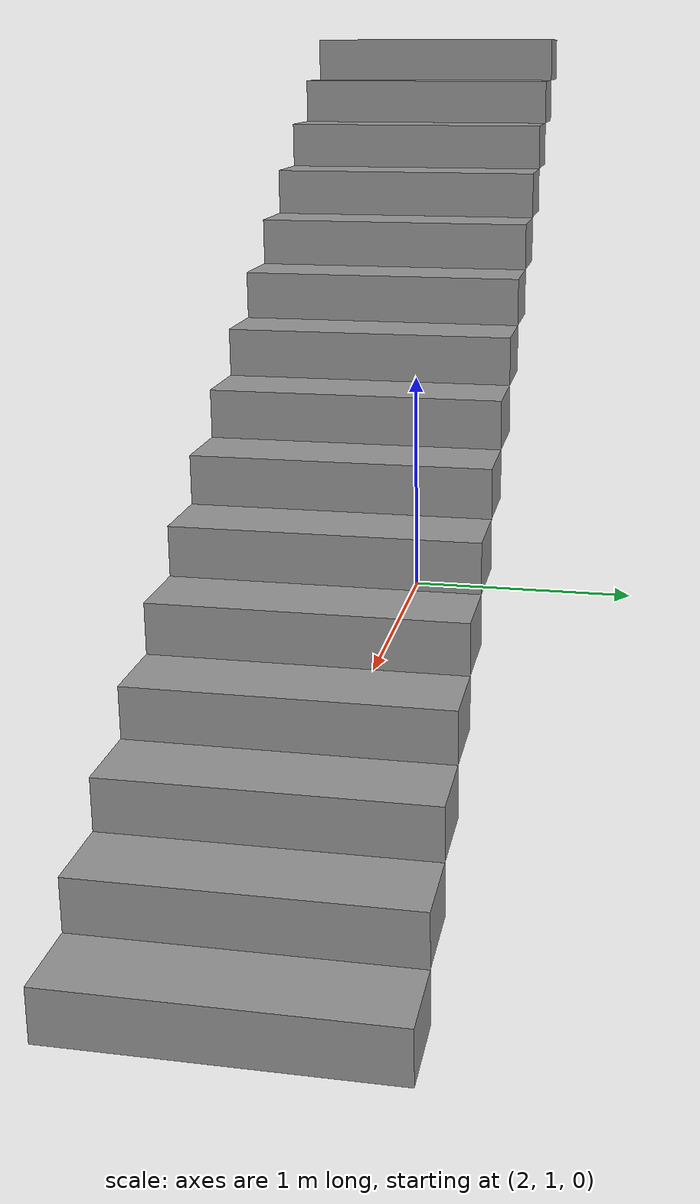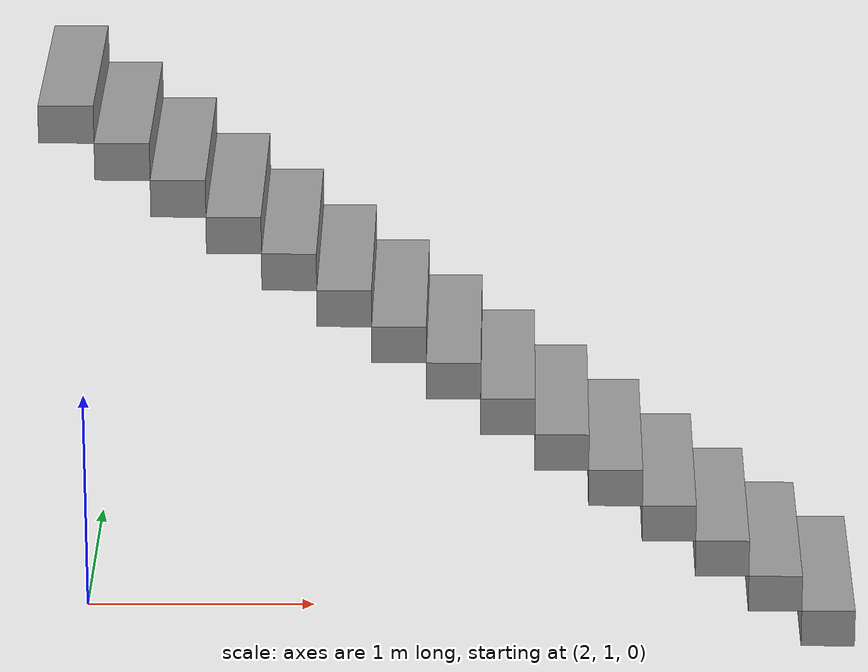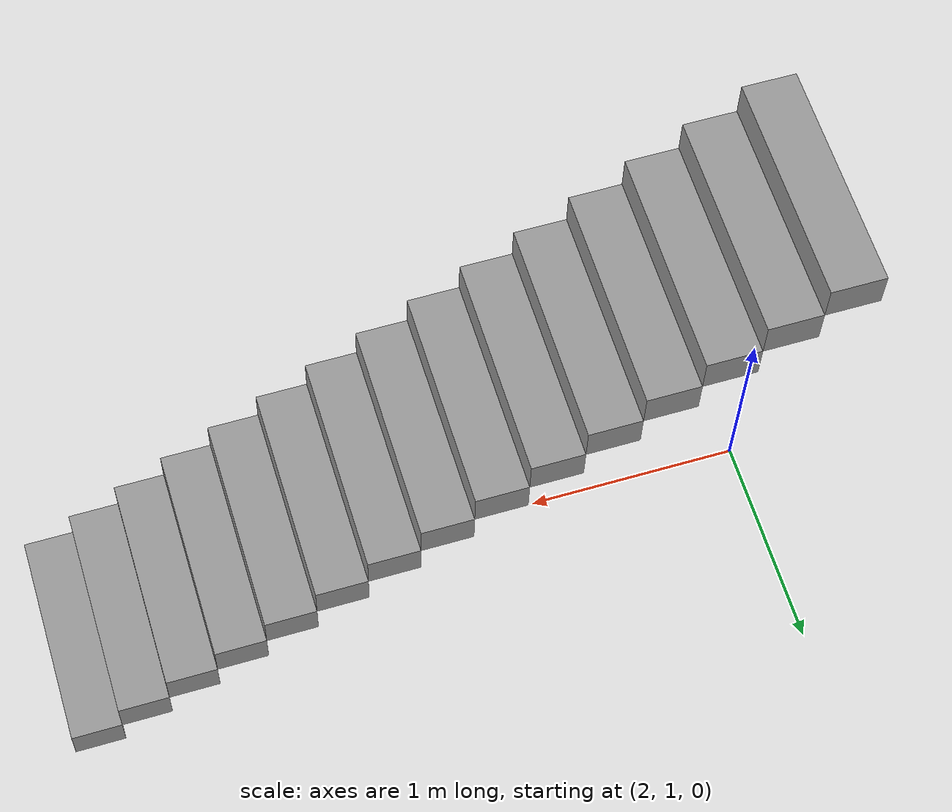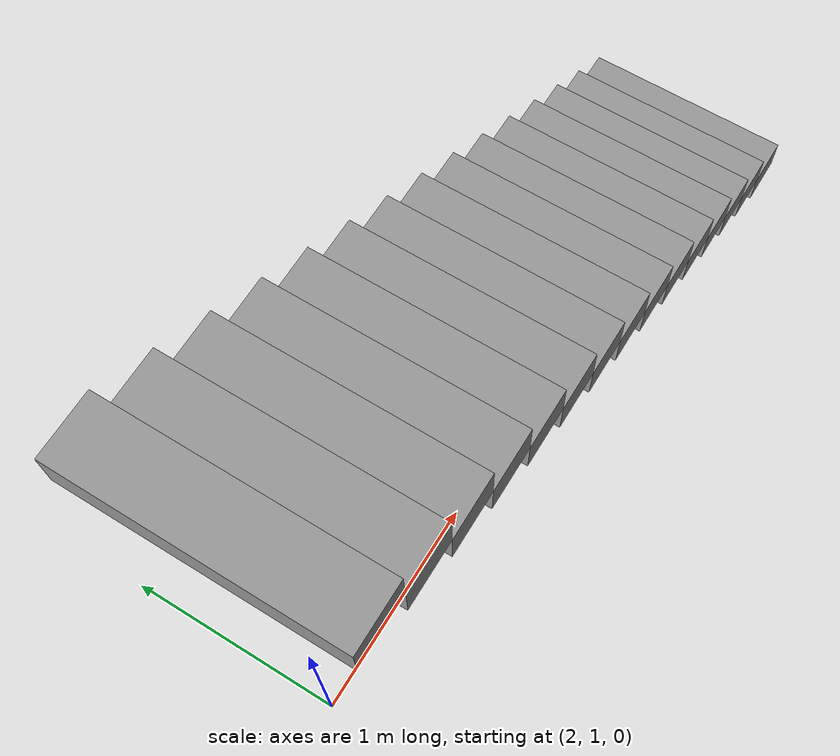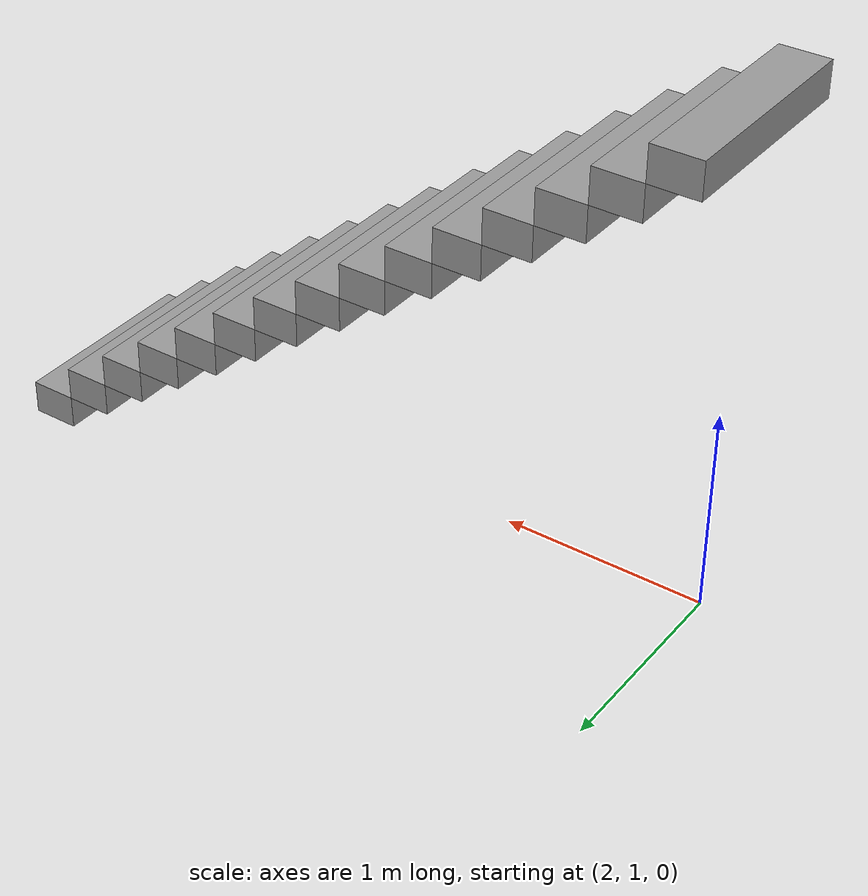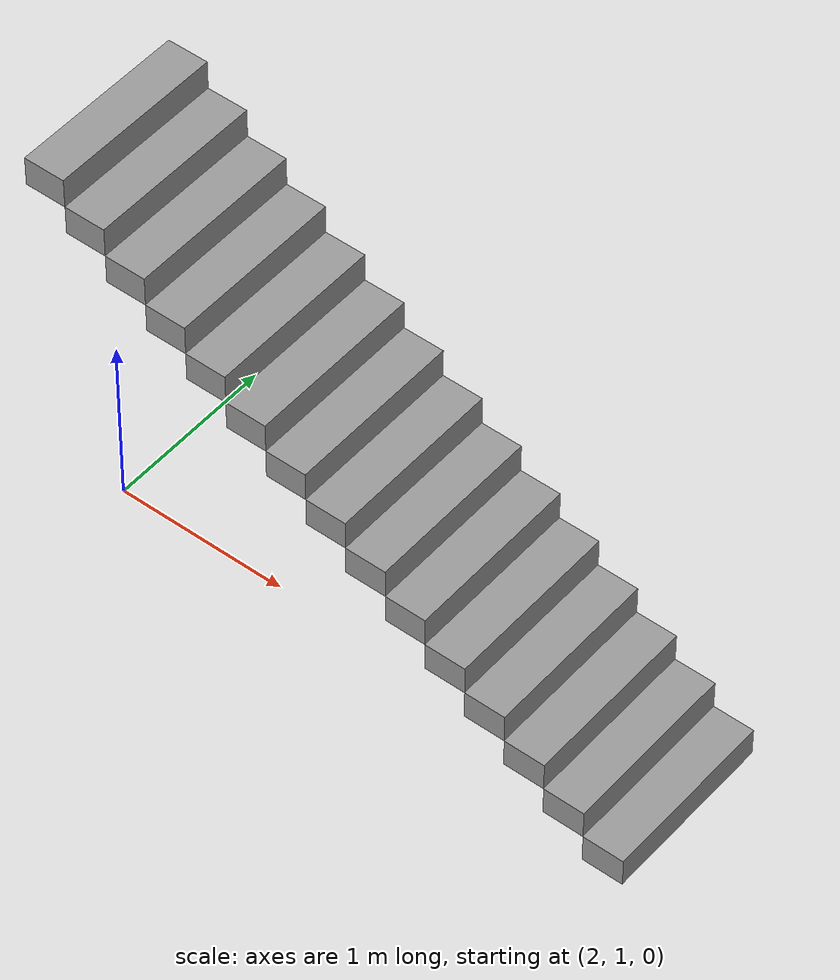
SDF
<sdf version="1.7">
 <model name="Drone_House">
  <pose>0.336432 0.443828 0 0 -0 0</pose>
  <link name="Stairs_0">
   <visual name="Stairs_0_Visual_0">
    <pose>4.91856 0.660416 0.083333 0 -0 -1.5708</pose>
    <geometry><box><size>1 0.233333 0.166667</size></box></geometry>
    <material>
     <script><uri>file://media/materials/scripts/gazebo.material</uri><name>Gazebo/Grey</name></script>
     <ambient>1 1 1 1</ambient>
    </material>
    <meta><layer>0</layer></meta>
   </visual>
   <collision name="Stairs_0_Collision_0">
    <geometry><box><size>1 0.233333 0.166667</size></box></geometry>
    <pose>4.91856 0.660416 0.083333 0 -0 -1.5708</pose>
   </collision>
   <visual name="Stairs_0_Visual_1">
    <pose>4.68522 0.660416 0.25 0 -0 -1.5708</pose>
    <geometry><box><size>1 0.233333 0.166667</size></box></geometry>
    <material>
     <script><uri>file://media/materials/scripts/gazebo.material</uri><name>Gazebo/Grey</name></script>
     <ambient>1 1 1 1</ambient>
    </material>
    <meta><layer>0</layer></meta>
   </visual>
   <collision name="Stairs_0_Collision_1">
    <geometry><box><size>1 0.233333 0.166667</size></box></geometry>
    <pose>4.68522 0.660416 0.25 0 -0 -1.5708</pose>
   </collision>
   <visual name="Stairs_0_Visual_2">
    <pose>4.45189 0.660416 0.416667 0 -0 -1.5708</pose>
    <geometry><box><size>1 0.233333 0.166667</size></box></geometry>
    <material>
     <script><uri>file://media/materials/scripts/gazebo.material</uri><name>Gazebo/Grey</name></script>
     <ambient>1 1 1 1</ambient>
    </material>
    <meta><layer>0</layer></meta>
   </visual>
   <collision name="Stairs_0_Collision_2">
    <geometry><box><size>1 0.233333 0.166667</size></box></geometry>
    <pose>4.45189 0.660416 0.416667 0 -0 -1.5708</pose>
   </collision>
   <visual name="Stairs_0_Visual_3">
    <pose>4.21856 0.660416 0.583333 0 -0 -1.5708</pose>
    <geometry><box><size>1 0.233333 0.166667</size></box></geometry>
    <material>
     <script><uri>file://media/materials/scripts/gazebo.material</uri><name>Gazebo/Grey</name></script>
     <ambient>1 1 1 1</ambient>
    </material>
    <meta><layer>0</layer></meta>
   </visual>
   <collision name="Stairs_0_Collision_3">
    <geometry><box><size>1 0.233333 0.166667</size></box></geometry>
    <pose>4.21856 0.660416 0.583333 0 -0 -1.5708</pose>
   </collision>
   <visual name="Stairs_0_Visual_4">
    <pose>3.98522 0.660417 0.75 0 -0 -1.5708</pose>
    <geometry><box><size>1 0.233333 0.166667</size></box></geometry>
    <material>
     <script><uri>file://media/materials/scripts/gazebo.material</uri><name>Gazebo/Grey</name></script>
     <ambient>1 1 1 1</ambient>
    </material>
    <meta><layer>0</layer></meta>
   </visual>
   <collision name="Stairs_0_Collision_4">
    <geometry><box><size>1 0.233333 0.166667</size></box></geometry>
    <pose>3.98522 0.660417 0.75 0 -0 -1.5708</pose>
   </collision>
   <visual name="Stairs_0_Visual_5">
    <pose>3.75189 0.660417 0.916667 0 -0 -1.5708</pose>
    <geometry><box><size>1 0.233333 0.166667</size></box></geometry>
    <material>
     <script><uri>file://media/materials/scripts/gazebo.material</uri><name>Gazebo/Grey</name></script>
     <ambient>1 1 1 1</ambient>
    </material>
    <meta><layer>0</layer></meta>
   </visual>
   <collision name="Stairs_0_Collision_5">
    <geometry><box><size>1 0.233333 0.166667</size></box></geometry>
    <pose>3.75189 0.660417 0.916667 0 -0 -1.5708</pose>
   </collision>
   <visual name="Stairs_0_Visual_6">
    <pose>3.51856 0.660417 1.08333 0 -0 -1.5708</pose>
    <geometry><box><size>1 0.233333 0.166667</size></box></geometry>
    <material>
     <script><uri>file://media/materials/scripts/gazebo.material</uri><name>Gazebo/Grey</name></script>
     <ambient>1 1 1 1</ambient>
    </material>
    <meta><layer>0</layer></meta>
   </visual>
   <collision name="Stairs_0_Collision_6">
    <geometry><box><size>1 0.233333 0.166667</size></box></geometry>
    <pose>3.51856 0.660417 1.08333 0 -0 -1.5708</pose>
   </collision>
   <visual name="Stairs_0_Visual_7">
    <pose>3.28522 0.660417 1.25 0 -0 -1.5708</pose>
    <geometry><box><size>1 0.233333 0.166667</size></box></geometry>
    <material>
     <script><uri>file://media/materials/scripts/gazebo.material</uri><name>Gazebo/Grey</name></script>
     <ambient>1 1 1 1</ambient>
    </material>
    <meta><layer>0</layer></meta>
   </visual>
   <collision name="Stairs_0_Collision_7">
    <geometry><box><size>1 0.233333 0.166667</size></box></geometry>
    <pose>3.28522 0.660417 1.25 0 -0 -1.5708</pose>
   </collision>
   <visual name="Stairs_0_Visual_8">
    <pose>3.05189 0.660417 1.41667 0 -0 -1.5708</pose>
    <geometry><box><size>1 0.233333 0.166667</size></box></geometry>
    <material>
     <script><uri>file://media/materials/scripts/gazebo.material</uri><name>Gazebo/Grey</name></script>
     <ambient>1 1 1 1</ambient>
    </material>
    <meta><layer>0</layer></meta>
   </visual>
   <collision name="Stairs_0_Collision_8">
    <geometry><box><size>1 0.233333 0.166667</size></box></geometry>
    <pose>3.05189 0.660417 1.41667 0 -0 -1.5708</pose>
   </collision>
   <visual name="Stairs_0_Visual_9">
    <pose>2.81856 0.660417 1.58333 0 -0 -1.5708</pose>
    <geometry><box><size>1 0.233333 0.166667</size></box></geometry>
    <material>
     <script><uri>file://media/materials/scripts/gazebo.material</uri><name>Gazebo/Grey</name></script>
     <ambient>1 1 1 1</ambient>
    </material>
    <meta><layer>0</layer></meta>
   </visual>
   <collision name="Stairs_0_Collision_9">
    <geometry><box><size>1 0.233333 0.166667</size></box></geometry>
    <pose>2.81856 0.660417 1.58333 0 -0 -1.5708</pose>
   </collision>
   <visual name="Stairs_0_Visual_10">
    <pose>2.58522 0.660417 1.75 0 -0 -1.5708</pose>
    <geometry><box><size>1 0.233333 0.166667</size></box></geometry>
    <material>
     <script><uri>file://media/materials/scripts/gazebo.material</uri><name>Gazebo/Grey</name></script>
     <ambient>1 1 1 1</ambient>
    </material>
    <meta><layer>0</layer></meta>
   </visual>
   <collision name="Stairs_0_Collision_10">
    <geometry><box><size>1 0.233333 0.166667</size></box></geometry>
    <pose>2.58522 0.660417 1.75 0 -0 -1.5708</pose>
   </collision>
   <visual name="Stairs_0_Visual_11">
    <pose>2.35189 0.660417 1.91667 0 -0 -1.5708</pose>
    <geometry><box><size>1 0.233333 0.166667</size></box></geometry>
    <material>
     <script><uri>file://media/materials/scripts/gazebo.material</uri><name>Gazebo/Grey</name></script>
     <ambient>1 1 1 1</ambient>
    </material>
    <meta><layer>0</layer></meta>
   </visual>
   <collision name="Stairs_0_Collision_11">
    <geometry><box><size>1 0.233333 0.166667</size></box></geometry>
    <pose>2.35189 0.660417 1.91667 0 -0 -1.5708</pose>
   </collision>
   <visual name="Stairs_0_Visual_12">
    <pose>2.11856 0.660417 2.08333 0 -0 -1.5708</pose>
    <geometry><box><size>1 0.233333 0.166667</size></box></geometry>
    <material>
     <script><uri>file://media/materials/scripts/gazebo.material</uri><name>Gazebo/Grey</name></script>
     <ambient>1 1 1 1</ambient>
    </material>
    <meta><layer>0</layer></meta>
   </visual>
   <collision name="Stairs_0_Collision_12">
    <geometry><box><size>1 0.233333 0.166667</size></box></geometry>
    <pose>2.11856 0.660417 2.08333 0 -0 -1.5708</pose>
   </collision>
   <visual name="Stairs_0_Visual_13">
    <pose>1.88522 0.660417 2.25 0 -0 -1.5708</pose>
    <geometry><box><size>1 0.233333 0.166667</size></box></geometry>
    <material>
     <script><uri>file://media/materials/scripts/gazebo.material</uri><name>Gazebo/Grey</name></script>
     <ambient>1 1 1 1</ambient>
    </material>
    <meta><layer>0</layer></meta>
   </visual>
   <collision name="Stairs_0_Collision_13">
    <geometry><box><size>1 0.233333 0.166667</size></box></geometry>
    <pose>1.88522 0.660417 2.25 0 -0 -1.5708</pose>
   </collision>
   <visual name="Stairs_0_Visual_14">
    <pose>1.65189 0.660417 2.41667 0 -0 -1.5708</pose>
    <geometry><box><size>1 0.233333 0.166667</size></box></geometry>
    <material>
     <script><uri>file://media/materials/scripts/gazebo.material</uri><name>Gazebo/Grey</name></script>
     <ambient>1 1 1 1</ambient>
    </material>
    <meta><layer>0</layer></meta>
   </visual>
   <collision name="Stairs_0_Collision_14">
    <geometry><box><size>1 0.233333 0.166667</size></box></geometry>
    <pose>1.65189 0.660417 2.41667 0 -0 -1.5708</pose>
   </collision>
  </link>
  <static>1</static>
 </model>
</sdf>
